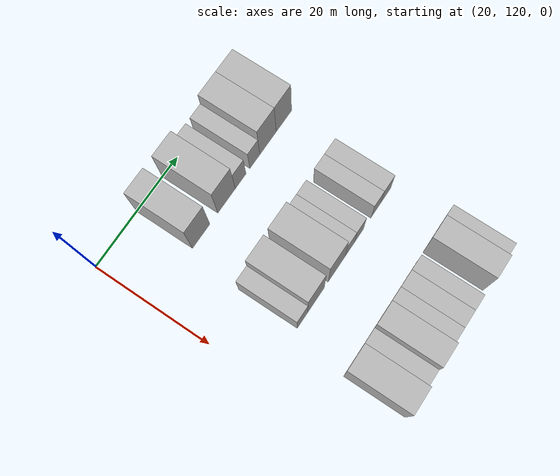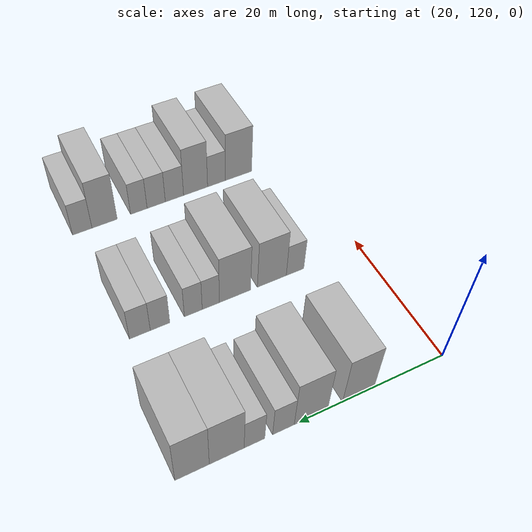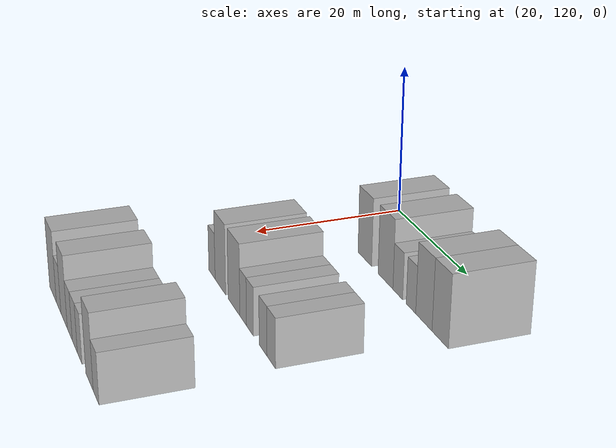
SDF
<sdf version="1.6">
 <world name="default">
  <model name="building_90">
   <static>1</static>
   <pose>25.0000 132.0710 0 0.000000 0.000000 0.000000</pose>
   <link name="link">
    <pose>0 0 4.50 0 0 0</pose>
    <collision name="collision"><geometry><box><size>10.0000 4.3558 9.0000</size></box></geometry></collision>
    <visual name="visual">
     <cast_shadows>0</cast_shadows>
     <geometry><box><size>10.0000 4.3558 9.0000</size></box></geometry>
     <material>
      <script>
       <uri>model://HANNAS_wall/materials/scripts</uri>
       <uri>model://HANNAS_wall/materials/textures</uri>
       <name>vrc/HANNAS_wall</name>
      </script>
     </material>
    </visual>
   </link>
  </model>
  <model name="building_91">
   <static>1</static>
   <pose>25.0000 138.4762 0 0.000000 0.000000 0.000000</pose>
   <link name="link">
    <pose>0 0 4.50 0 0 0</pose>
    <collision name="collision"><geometry><box><size>10.0000 4.4545 9.0000</size></box></geometry></collision>
    <visual name="visual">
     <cast_shadows>0</cast_shadows>
     <geometry><box><size>10.0000 4.4545 9.0000</size></box></geometry>
     <material>
      <script>
       <uri>model://HANNAS_wall/materials/scripts</uri>
       <uri>model://HANNAS_wall/materials/textures</uri>
       <name>vrc/HANNAS_wall</name>
      </script>
     </material>
    </visual>
   </link>
  </model>
  <model name="building_92">
   <static>1</static>
   <pose>25.0000 142.1031 0 0.000000 0.000000 0.000000</pose>
   <link name="link">
    <pose>0 0 3.00 0 0 0</pose>
    <collision name="collision"><geometry><box><size>10.0000 2.7995 6.0000</size></box></geometry></collision>
    <visual name="visual">
     <cast_shadows>0</cast_shadows>
     <geometry><box><size>10.0000 2.7995 6.0000</size></box></geometry>
     <material>
      <script>
       <uri>model://HANNAS_wall/materials/scripts</uri>
       <uri>model://HANNAS_wall/materials/textures</uri>
       <name>vrc/HANNAS_wall</name>
      </script>
     </material>
    </visual>
   </link>
  </model>
  <model name="building_93">
   <static>1</static>
   <pose>25.0000 145.8149 0 0.000000 0.000000 0.000000</pose>
   <link name="link">
    <pose>0 0 3.00 0 0 0</pose>
    <collision name="collision"><geometry><box><size>10.0000 2.6241 6.0000</size></box></geometry></collision>
    <visual name="visual">
     <cast_shadows>0</cast_shadows>
     <geometry><box><size>10.0000 2.6241 6.0000</size></box></geometry>
     <material>
      <script>
       <uri>model://HANNAS_wall/materials/scripts</uri>
       <uri>model://HANNAS_wall/materials/textures</uri>
       <name>vrc/HANNAS_wall</name>
      </script>
     </material>
    </visual>
   </link>
  </model>
  <model name="building_94">
   <static>1</static>
   <pose>25.0000 149.2840 0 0.000000 0.000000 0.000000</pose>
   <link name="link">
    <pose>0 0 4.50 0 0 0</pose>
    <collision name="collision"><geometry><box><size>10.0000 4.3140 9.0000</size></box></geometry></collision>
    <visual name="visual">
     <cast_shadows>0</cast_shadows>
     <geometry><box><size>10.0000 4.3140 9.0000</size></box></geometry>
     <material>
      <script>
       <uri>model://HANNAS_wall/materials/scripts</uri>
       <uri>model://HANNAS_wall/materials/textures</uri>
       <name>vrc/HANNAS_wall</name>
      </script>
     </material>
    </visual>
   </link>
  </model>
  <model name="building_95">
   <static>1</static>
   <pose>25.0000 153.5208 0 0.000000 0.000000 0.000000</pose>
   <link name="link">
    <pose>0 0 4.50 0 0 0</pose>
    <collision name="collision"><geometry><box><size>10.0000 4.1597 9.0000</size></box></geometry></collision>
    <visual name="visual">
     <cast_shadows>0</cast_shadows>
     <geometry><box><size>10.0000 4.1597 9.0000</size></box></geometry>
     <material>
      <script>
       <uri>model://HANNAS_wall/materials/scripts</uri>
       <uri>model://HANNAS_wall/materials/textures</uri>
       <name>vrc/HANNAS_wall</name>
      </script>
     </material>
    </visual>
   </link>
  </model>
  <model name="building_197">
   <static>1</static>
   <pose>44.0000 129.9693 0 0.000000 0.000000 0.000000</pose>
   <link name="link">
    <pose>0 0 3.00 0 0 0</pose>
    <collision name="collision"><geometry><box><size>10.0000 2.6466 6.0000</size></box></geometry></collision>
    <visual name="visual">
     <cast_shadows>0</cast_shadows>
     <geometry><box><size>10.0000 2.6466 6.0000</size></box></geometry>
     <material>
      <script>
       <uri>model://HANNAS_wall/materials/scripts</uri>
       <uri>model://HANNAS_wall/materials/textures</uri>
       <name>vrc/HANNAS_wall</name>
      </script>
     </material>
    </visual>
   </link>
  </model>
  <model name="building_198">
   <static>1</static>
   <pose>44.0000 133.4371 0 0.000000 0.000000 0.000000</pose>
   <link name="link">
    <pose>0 0 4.50 0 0 0</pose>
    <collision name="collision"><geometry><box><size>10.0000 4.2891 9.0000</size></box></geometry></collision>
    <visual name="visual">
     <cast_shadows>0</cast_shadows>
     <geometry><box><size>10.0000 4.2891 9.0000</size></box></geometry>
     <material>
      <script>
       <uri>model://HANNAS_wall/materials/scripts</uri>
       <uri>model://HANNAS_wall/materials/textures</uri>
       <name>vrc/HANNAS_wall</name>
      </script>
     </material>
    </visual>
   </link>
  </model>
  <model name="building_199">
   <static>1</static>
   <pose>44.0000 138.8221 0 0.000000 0.000000 0.000000</pose>
   <link name="link">
    <pose>0 0 4.50 0 0 0</pose>
    <collision name="collision"><geometry><box><size>10.0000 4.4808 9.0000</size></box></geometry></collision>
    <visual name="visual">
     <cast_shadows>0</cast_shadows>
     <geometry><box><size>10.0000 4.4808 9.0000</size></box></geometry>
     <material>
      <script>
       <uri>model://HANNAS_wall/materials/scripts</uri>
       <uri>model://HANNAS_wall/materials/textures</uri>
       <name>vrc/HANNAS_wall</name>
      </script>
     </material>
    </visual>
   </link>
  </model>
  <model name="building_200">
   <static>1</static>
   <pose>44.0000 142.2736 0 0.000000 0.000000 0.000000</pose>
   <link name="link">
    <pose>0 0 3.00 0 0 0</pose>
    <collision name="collision"><geometry><box><size>10.0000 2.4222 6.0000</size></box></geometry></collision>
    <visual name="visual">
     <cast_shadows>0</cast_shadows>
     <geometry><box><size>10.0000 2.4222 6.0000</size></box></geometry>
     <material>
      <script>
       <uri>model://HANNAS_wall/materials/scripts</uri>
       <uri>model://HANNAS_wall/materials/textures</uri>
       <name>vrc/HANNAS_wall</name>
      </script>
     </material>
    </visual>
   </link>
  </model>
  <model name="building_201">
   <static>1</static>
   <pose>44.0000 144.7290 0 0.000000 0.000000 0.000000</pose>
   <link name="link">
    <pose>0 0 3.00 0 0 0</pose>
    <collision name="collision"><geometry><box><size>10.0000 2.4887 6.0000</size></box></geometry></collision>
    <visual name="visual">
     <cast_shadows>0</cast_shadows>
     <geometry><box><size>10.0000 2.4887 6.0000</size></box></geometry>
     <material>
      <script>
       <uri>model://HANNAS_wall/materials/scripts</uri>
       <uri>model://HANNAS_wall/materials/textures</uri>
       <name>vrc/HANNAS_wall</name>
      </script>
     </material>
    </visual>
   </link>
  </model>
  <model name="building_202">
   <static>1</static>
   <pose>44.0000 149.2966 0 0.000000 0.000000 0.000000</pose>
   <link name="link">
    <pose>0 0 3.00 0 0 0</pose>
    <collision name="collision"><geometry><box><size>10.0000 2.6465 6.0000</size></box></geometry></collision>
    <visual name="visual">
     <cast_shadows>0</cast_shadows>
     <geometry><box><size>10.0000 2.6465 6.0000</size></box></geometry>
     <material>
      <script>
       <uri>model://HANNAS_wall/materials/scripts</uri>
       <uri>model://HANNAS_wall/materials/textures</uri>
       <name>vrc/HANNAS_wall</name>
      </script>
     </material>
    </visual>
   </link>
  </model>
  <model name="building_203">
   <static>1</static>
   <pose>44.0000 152.0149 0 0.000000 0.000000 0.000000</pose>
   <link name="link">
    <pose>0 0 3.00 0 0 0</pose>
    <collision name="collision"><geometry><box><size>10.0000 2.7900 6.0000</size></box></geometry></collision>
    <visual name="visual">
     <cast_shadows>0</cast_shadows>
     <geometry><box><size>10.0000 2.7900 6.0000</size></box></geometry>
     <material>
      <script>
       <uri>model://HANNAS_wall/materials/scripts</uri>
       <uri>model://HANNAS_wall/materials/textures</uri>
       <name>vrc/HANNAS_wall</name>
      </script>
     </material>
    </visual>
   </link>
  </model>
  <model name="building_314">
   <static>1</static>
   <pose>63.0000 128.8159 0 0.000000 0.000000 0.000000</pose>
   <link name="link">
    <pose>0 0 4.50 0 0 0</pose>
    <collision name="collision"><geometry><box><size>10.0000 4.2919 9.0000</size></box></geometry></collision>
    <visual name="visual">
     <cast_shadows>0</cast_shadows>
     <geometry><box><size>10.0000 4.2919 9.0000</size></box></geometry>
     <material>
      <script>
       <uri>model://HANNAS_wall/materials/scripts</uri>
       <uri>model://HANNAS_wall/materials/textures</uri>
       <name>vrc/HANNAS_wall</name>
      </script>
     </material>
    </visual>
   </link>
  </model>
  <model name="building_315">
   <static>1</static>
   <pose>63.0000 132.3894 0 0.000000 0.000000 0.000000</pose>
   <link name="link">
    <pose>0 0 3.00 0 0 0</pose>
    <collision name="collision"><geometry><box><size>10.0000 2.8551 6.0000</size></box></geometry></collision>
    <visual name="visual">
     <cast_shadows>0</cast_shadows>
     <geometry><box><size>10.0000 2.8551 6.0000</size></box></geometry>
     <material>
      <script>
       <uri>model://HANNAS_wall/materials/scripts</uri>
       <uri>model://HANNAS_wall/materials/textures</uri>
       <name>vrc/HANNAS_wall</name>
      </script>
     </material>
    </visual>
   </link>
  </model>
  <model name="building_316">
   <static>1</static>
   <pose>63.0000 135.7162 0 0.000000 0.000000 0.000000</pose>
   <link name="link">
    <pose>0 0 4.50 0 0 0</pose>
    <collision name="collision"><geometry><box><size>10.0000 3.7984 9.0000</size></box></geometry></collision>
    <visual name="visual">
     <cast_shadows>0</cast_shadows>
     <geometry><box><size>10.0000 3.7984 9.0000</size></box></geometry>
     <material>
      <script>
       <uri>model://HANNAS_wall/materials/scripts</uri>
       <uri>model://HANNAS_wall/materials/textures</uri>
       <name>vrc/HANNAS_wall</name>
      </script>
     </material>
    </visual>
   </link>
  </model>
  <model name="building_317">
   <static>1</static>
   <pose>63.0000 139.0331 0 0.000000 0.000000 0.000000</pose>
   <link name="link">
    <pose>0 0 3.00 0 0 0</pose>
    <collision name="collision"><geometry><box><size>10.0000 2.8355 6.0000</size></box></geometry></collision>
    <visual name="visual">
     <cast_shadows>0</cast_shadows>
     <geometry><box><size>10.0000 2.8355 6.0000</size></box></geometry>
     <material>
      <script>
       <uri>model://HANNAS_wall/materials/scripts</uri>
       <uri>model://HANNAS_wall/materials/textures</uri>
       <name>vrc/HANNAS_wall</name>
      </script>
     </material>
    </visual>
   </link>
  </model>
  <model name="building_318">
   <static>1</static>
   <pose>63.0000 141.8501 0 0.000000 0.000000 0.000000</pose>
   <link name="link">
    <pose>0 0 3.00 0 0 0</pose>
    <collision name="collision"><geometry><box><size>10.0000 2.7984 6.0000</size></box></geometry></collision>
    <visual name="visual">
     <cast_shadows>0</cast_shadows>
     <geometry><box><size>10.0000 2.7984 6.0000</size></box></geometry>
     <material>
      <script>
       <uri>model://HANNAS_wall/materials/scripts</uri>
       <uri>model://HANNAS_wall/materials/textures</uri>
       <name>vrc/HANNAS_wall</name>
      </script>
     </material>
    </visual>
   </link>
  </model>
  <model name="building_319">
   <static>1</static>
   <pose>63.0000 144.5021 0 0.000000 0.000000 0.000000</pose>
   <link name="link">
    <pose>0 0 3.00 0 0 0</pose>
    <collision name="collision"><geometry><box><size>10.0000 2.5057 6.0000</size></box></geometry></collision>
    <visual name="visual">
     <cast_shadows>0</cast_shadows>
     <geometry><box><size>10.0000 2.5057 6.0000</size></box></geometry>
     <material>
      <script>
       <uri>model://HANNAS_wall/materials/scripts</uri>
       <uri>model://HANNAS_wall/materials/textures</uri>
       <name>vrc/HANNAS_wall</name>
      </script>
     </material>
    </visual>
   </link>
  </model>
  <model name="building_320">
   <static>1</static>
   <pose>63.0000 149.6138 0 0.000000 0.000000 0.000000</pose>
   <link name="link">
    <pose>0 0 4.50 0 0 0</pose>
    <collision name="collision"><geometry><box><size>10.0000 3.7176 9.0000</size></box></geometry></collision>
    <visual name="visual">
     <cast_shadows>0</cast_shadows>
     <geometry><box><size>10.0000 3.7176 9.0000</size></box></geometry>
     <material>
      <script>
       <uri>model://HANNAS_wall/materials/scripts</uri>
       <uri>model://HANNAS_wall/materials/textures</uri>
       <name>vrc/HANNAS_wall</name>
      </script>
     </material>
    </visual>
   </link>
  </model>
  <model name="building_321">
   <static>1</static>
   <pose>63.0000 152.8809 0 0.000000 0.000000 0.000000</pose>
   <link name="link">
    <pose>0 0 3.00 0 0 0</pose>
    <collision name="collision"><geometry><box><size>10.0000 2.8167 6.0000</size></box></geometry></collision>
    <visual name="visual">
     <cast_shadows>0</cast_shadows>
     <geometry><box><size>10.0000 2.8167 6.0000</size></box></geometry>
     <material>
      <script>
       <uri>model://HANNAS_wall/materials/scripts</uri>
       <uri>model://HANNAS_wall/materials/textures</uri>
       <name>vrc/HANNAS_wall</name>
      </script>
     </material>
    </visual>
   </link>
  </model>
 </world>
</sdf>
